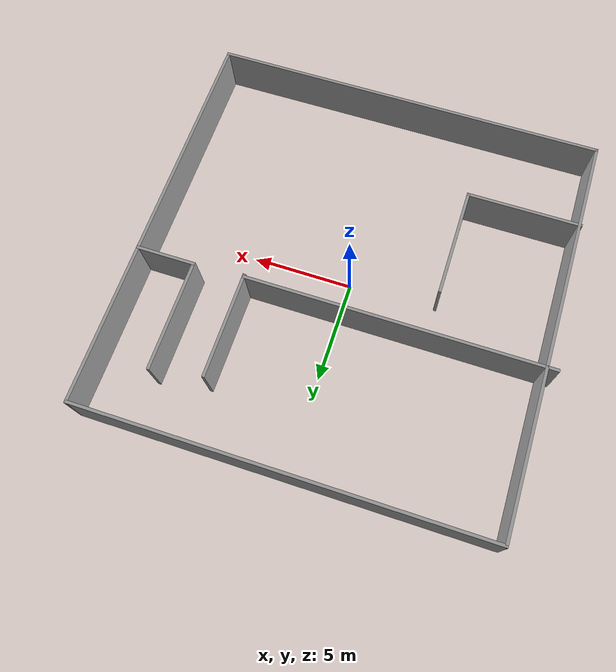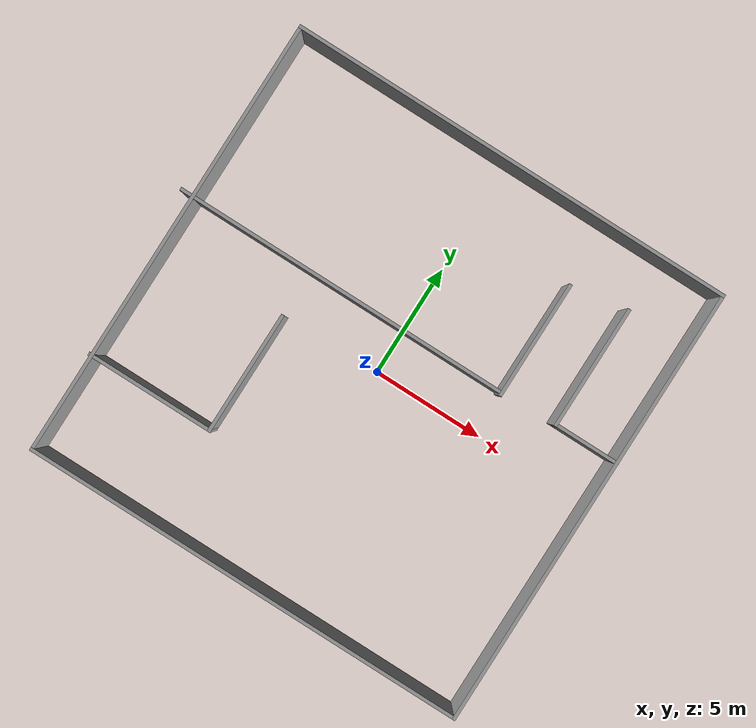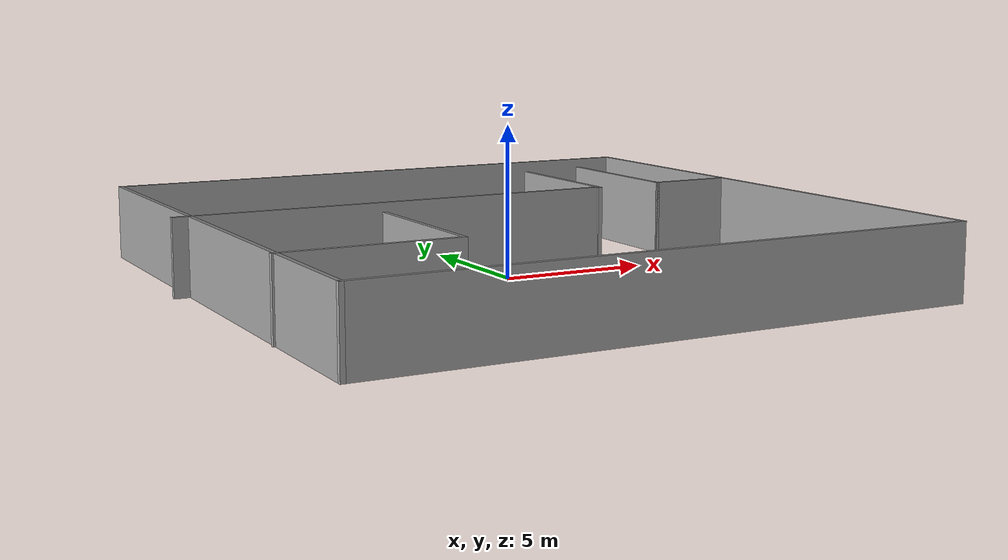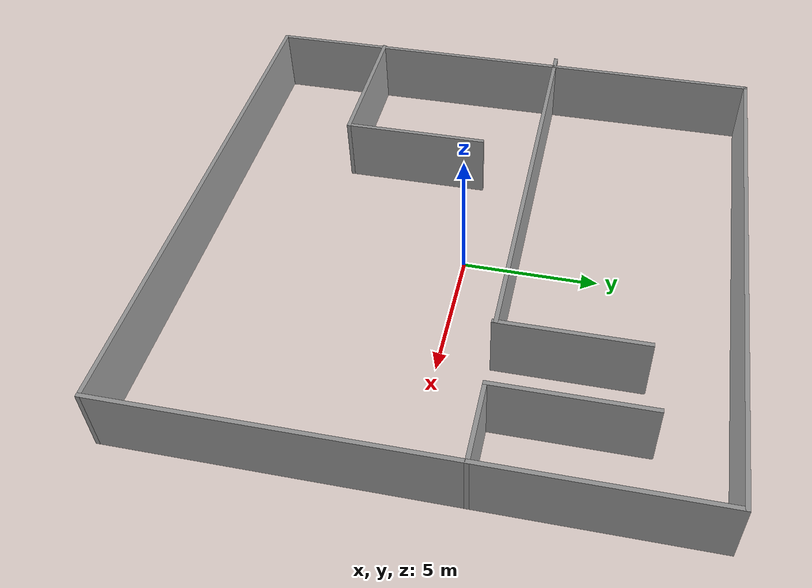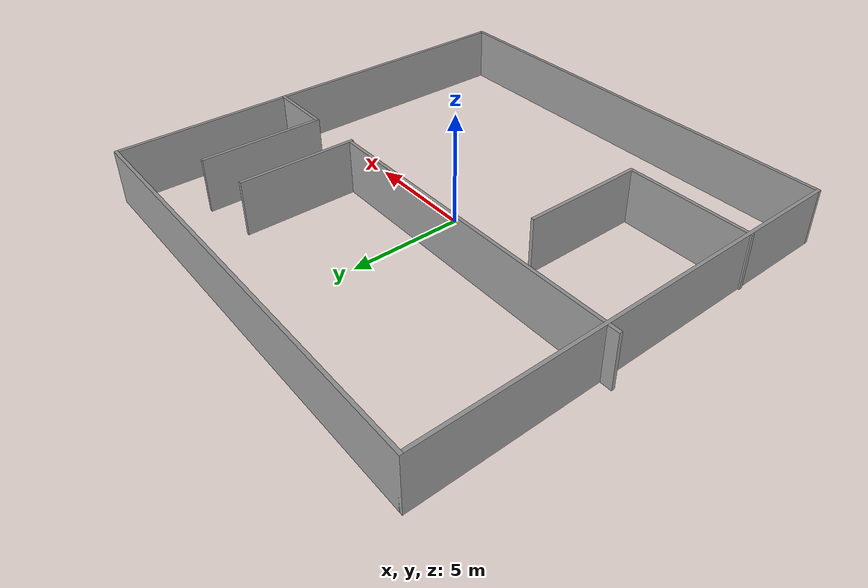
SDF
<?xml version='1.0'?>
<sdf version='1.6'>
  <model name='walls'>
    <link name='Wall_0'>
      <pose frame=''>0.030536 9.925 0 0 -0 0</pose>
      <self_collide>0</self_collide>
      <enable_wind>0</enable_wind>
      <kinematic>0</kinematic>
      <visual name='Wall_0_Visual'>
        <pose frame=''>0 0 1.25 0 -0 0</pose>
        <geometry>
          <box>
            <size>20 0.15 2.5</size>
          </box>
        </geometry>
        <material>
          <script>
            <uri>file://media/materials/scripts/gazebo.material</uri>
            <name>Gazebo/Grey</name>
          </script>
          <ambient>1 1 1 1</ambient>
        </material>
        <transparency>0</transparency>
        <cast_shadows>1</cast_shadows>
      </visual>
      <collision name='Wall_0_Collision'>
        <laser_retro>0</laser_retro>
        <max_contacts>10</max_contacts>
        <pose frame=''>0 0 1.25 0 -0 0</pose>
        <geometry>
          <box>
            <size>20 0.15 2.5</size>
          </box>
        </geometry>
        <surface>
          <friction>
            <ode>
              <mu>1</mu>
              <mu2>1</mu2>
              <fdir1>0 0 0</fdir1>
              <slip1>0</slip1>
              <slip2>0</slip2>
            </ode>
            <torsional>
              <coefficient>1</coefficient>
              <patch_radius>0</patch_radius>
              <surface_radius>0</surface_radius>
              <use_patch_radius>1</use_patch_radius>
              <ode>
                <slip>0</slip>
              </ode>
            </torsional>
          </friction>
          <bounce>
            <restitution_coefficient>0</restitution_coefficient>
            <threshold>1e+06</threshold>
          </bounce>
          <contact>
            <collide_without_contact>0</collide_without_contact>
            <collide_without_contact_bitmask>1</collide_without_contact_bitmask>
            <collide_bitmask>1</collide_bitmask>
            <ode>
              <soft_cfm>0</soft_cfm>
              <soft_erp>0.2</soft_erp>
              <kp>1e+13</kp>
              <kd>1</kd>
              <max_vel>0.01</max_vel>
              <min_depth>0</min_depth>
            </ode>
            <bullet>
              <split_impulse>1</split_impulse>
              <split_impulse_penetration_threshold>-0.01</split_impulse_penetration_threshold>
              <soft_cfm>0</soft_cfm>
              <soft_erp>0.2</soft_erp>
              <kp>1e+13</kp>
              <kd>1</kd>
            </bullet>
          </contact>
        </surface>
      </collision>
    </link>
    <link name='Wall_1'>
      <pose frame=''>9.95554 0 0 0 0 -1.5708</pose>
      <self_collide>0</self_collide>
      <enable_wind>0</enable_wind>
      <kinematic>0</kinematic>
      <visual name='Wall_1_Visual'>
        <pose frame=''>0 0 1.25 0 -0 0</pose>
        <geometry>
          <box>
            <size>20 0.15 2.5</size>
          </box>
        </geometry>
        <material>
          <script>
            <uri>file://media/materials/scripts/gazebo.material</uri>
            <name>Gazebo/Grey</name>
          </script>
          <ambient>1 1 1 1</ambient>
        </material>
        <transparency>0</transparency>
        <cast_shadows>1</cast_shadows>
      </visual>
      <collision name='Wall_1_Collision'>
        <laser_retro>0</laser_retro>
        <max_contacts>10</max_contacts>
        <pose frame=''>0 0 1.25 0 -0 0</pose>
        <geometry>
          <box>
            <size>20 0.15 2.5</size>
          </box>
        </geometry>
        <surface>
          <friction>
            <ode>
              <mu>1</mu>
              <mu2>1</mu2>
              <fdir1>0 0 0</fdir1>
              <slip1>0</slip1>
              <slip2>0</slip2>
            </ode>
            <torsional>
              <coefficient>1</coefficient>
              <patch_radius>0</patch_radius>
              <surface_radius>0</surface_radius>
              <use_patch_radius>1</use_patch_radius>
              <ode>
                <slip>0</slip>
              </ode>
            </torsional>
          </friction>
          <bounce>
            <restitution_coefficient>0</restitution_coefficient>
            <threshold>1e+06</threshold>
          </bounce>
          <contact>
            <collide_without_contact>0</collide_without_contact>
            <collide_without_contact_bitmask>1</collide_without_contact_bitmask>
            <collide_bitmask>1</collide_bitmask>
            <ode>
              <soft_cfm>0</soft_cfm>
              <soft_erp>0.2</soft_erp>
              <kp>1e+13</kp>
              <kd>1</kd>
              <max_vel>0.01</max_vel>
              <min_depth>0</min_depth>
            </ode>
            <bullet>
              <split_impulse>1</split_impulse>
              <split_impulse_penetration_threshold>-0.01</split_impulse_penetration_threshold>
              <soft_cfm>0</soft_cfm>
              <soft_erp>0.2</soft_erp>
              <kp>1e+13</kp>
              <kd>1</kd>
            </bullet>
          </contact>
        </surface>
      </collision>
    </link>
    <link name='Wall_2'>
      <pose frame=''>0.030536 -9.925 0 0 -0 3.14159</pose>
      <self_collide>0</self_collide>
      <enable_wind>0</enable_wind>
      <kinematic>0</kinematic>
      <visual name='Wall_2_Visual'>
        <pose frame=''>0 0 1.25 0 -0 0</pose>
        <geometry>
          <box>
            <size>20 0.15 2.5</size>
          </box>
        </geometry>
        <material>
          <script>
            <uri>file://media/materials/scripts/gazebo.material</uri>
            <name>Gazebo/Grey</name>
          </script>
          <ambient>1 1 1 1</ambient>
        </material>
        <transparency>0</transparency>
        <cast_shadows>1</cast_shadows>
      </visual>
      <collision name='Wall_2_Collision'>
        <laser_retro>0</laser_retro>
        <max_contacts>10</max_contacts>
        <pose frame=''>0 0 1.25 0 -0 0</pose>
        <geometry>
          <box>
            <size>20 0.15 2.5</size>
          </box>
        </geometry>
        <surface>
          <friction>
            <ode>
              <mu>1</mu>
              <mu2>1</mu2>
              <fdir1>0 0 0</fdir1>
              <slip1>0</slip1>
              <slip2>0</slip2>
            </ode>
            <torsional>
              <coefficient>1</coefficient>
              <patch_radius>0</patch_radius>
              <surface_radius>0</surface_radius>
              <use_patch_radius>1</use_patch_radius>
              <ode>
                <slip>0</slip>
              </ode>
            </torsional>
          </friction>
          <bounce>
            <restitution_coefficient>0</restitution_coefficient>
            <threshold>1e+06</threshold>
          </bounce>
          <contact>
            <collide_without_contact>0</collide_without_contact>
            <collide_without_contact_bitmask>1</collide_without_contact_bitmask>
            <collide_bitmask>1</collide_bitmask>
            <ode>
              <soft_cfm>0</soft_cfm>
              <soft_erp>0.2</soft_erp>
              <kp>1e+13</kp>
              <kd>1</kd>
              <max_vel>0.01</max_vel>
              <min_depth>0</min_depth>
            </ode>
            <bullet>
              <split_impulse>1</split_impulse>
              <split_impulse_penetration_threshold>-0.01</split_impulse_penetration_threshold>
              <soft_cfm>0</soft_cfm>
              <soft_erp>0.2</soft_erp>
              <kp>1e+13</kp>
              <kd>1</kd>
            </bullet>
          </contact>
        </surface>
      </collision>
    </link>
    <link name='Wall_25'>
      <pose frame=''>4.62195 4.44502 0 0 -0 1.5708</pose>
      <self_collide>0</self_collide>
      <enable_wind>0</enable_wind>
      <kinematic>0</kinematic>
      <gravity>1</gravity>
      <inertial>
        <mass>1</mass>
        <pose frame=''>0 0 0 0 -0 0</pose>
        <inertia>
          <ixx>1</ixx>
          <ixy>0</ixy>
          <ixz>0</ixz>
          <iyy>1</iyy>
          <iyz>0</iyz>
          <izz>1</izz>
        </inertia>
      </inertial>
      <visual name='Wall_25_Visual'>
        <pose frame=''>0 0 1.25 0 -0 0</pose>
        <geometry>
          <box>
            <size>5.25 0.15 2.5</size>
          </box>
        </geometry>
        <material>
          <script>
            <uri>file://media/materials/scripts/gazebo.material</uri>
            <name>Gazebo/Grey</name>
          </script>
          <ambient>1 1 1 1</ambient>
          <shader type='vertex'>
            <normal_map>__default__</normal_map>
          </shader>
          <diffuse>0.7 0.7 0.7 1</diffuse>
          <specular>0.01 0.01 0.01 1</specular>
          <emissive>0 0 0 1</emissive>
        </material>
        <transparency>0</transparency>
        <cast_shadows>1</cast_shadows>
      </visual>
      <collision name='Wall_25_Collision'>
        <laser_retro>0</laser_retro>
        <max_contacts>10</max_contacts>
        <pose frame=''>0 0 1.25 0 -0 0</pose>
        <geometry>
          <box>
            <size>5.25 0.15 2.5</size>
          </box>
        </geometry>
        <surface>
          <friction>
            <ode>
              <mu>1</mu>
              <mu2>1</mu2>
              <fdir1>0 0 0</fdir1>
              <slip1>0</slip1>
              <slip2>0</slip2>
            </ode>
            <torsional>
              <coefficient>1</coefficient>
              <patch_radius>0</patch_radius>
              <surface_radius>0</surface_radius>
              <use_patch_radius>1</use_patch_radius>
              <ode>
                <slip>0</slip>
              </ode>
            </torsional>
          </friction>
          <bounce>
            <restitution_coefficient>0</restitution_coefficient>
            <threshold>1e+06</threshold>
          </bounce>
          <contact>
            <collide_without_contact>0</collide_without_contact>
            <collide_without_contact_bitmask>1</collide_without_contact_bitmask>
            <collide_bitmask>1</collide_bitmask>
            <ode>
              <soft_cfm>0</soft_cfm>
              <soft_erp>0.2</soft_erp>
              <kp>1e+13</kp>
              <kd>1</kd>
              <max_vel>0.01</max_vel>
              <min_depth>0</min_depth>
            </ode>
            <bullet>
              <split_impulse>1</split_impulse>
              <split_impulse_penetration_threshold>-0.01</split_impulse_penetration_threshold>
              <soft_cfm>0</soft_cfm>
              <soft_erp>0.2</soft_erp>
              <kp>1e+13</kp>
              <kd>1</kd>
            </bullet>
          </contact>
        </surface>
      </collision>
    </link>
    <link name='Wall_27'>
      <pose frame=''>7.10914 4.73454 0 0 0 -1.5708</pose>
      <self_collide>0</self_collide>
      <enable_wind>0</enable_wind>
      <kinematic>0</kinematic>
      <visual name='Wall_27_Visual'>
        <pose frame=''>0 0 1.25 0 -0 0</pose>
        <geometry>
          <box>
            <size>5.5 0.15 2.5</size>
          </box>
        </geometry>
        <material>
          <script>
            <uri>file://media/materials/scripts/gazebo.material</uri>
            <name>Gazebo/Grey</name>
          </script>
          <ambient>1 1 1 1</ambient>
        </material>
        <transparency>0</transparency>
        <cast_shadows>1</cast_shadows>
      </visual>
      <collision name='Wall_27_Collision'>
        <laser_retro>0</laser_retro>
        <max_contacts>10</max_contacts>
        <pose frame=''>0 0 1.25 0 -0 0</pose>
        <geometry>
          <box>
            <size>5.5 0.15 2.5</size>
          </box>
        </geometry>
        <surface>
          <friction>
            <ode>
              <mu>1</mu>
              <mu2>1</mu2>
              <fdir1>0 0 0</fdir1>
              <slip1>0</slip1>
              <slip2>0</slip2>
            </ode>
            <torsional>
              <coefficient>1</coefficient>
              <patch_radius>0</patch_radius>
              <surface_radius>0</surface_radius>
              <use_patch_radius>1</use_patch_radius>
              <ode>
                <slip>0</slip>
              </ode>
            </torsional>
          </friction>
          <bounce>
            <restitution_coefficient>0</restitution_coefficient>
            <threshold>1e+06</threshold>
          </bounce>
          <contact>
            <collide_without_contact>0</collide_without_contact>
            <collide_without_contact_bitmask>1</collide_without_contact_bitmask>
            <collide_bitmask>1</collide_bitmask>
            <ode>
              <soft_cfm>0</soft_cfm>
              <soft_erp>0.2</soft_erp>
              <kp>1e+13</kp>
              <kd>1</kd>
              <max_vel>0.01</max_vel>
              <min_depth>0</min_depth>
            </ode>
            <bullet>
              <split_impulse>1</split_impulse>
              <split_impulse_penetration_threshold>-0.01</split_impulse_penetration_threshold>
              <soft_cfm>0</soft_cfm>
              <soft_erp>0.2</soft_erp>
              <kp>1e+13</kp>
              <kd>1</kd>
            </bullet>
          </contact>
        </surface>
      </collision>
    </link>
    <link name='Wall_28'>
      <pose frame=''>8.53414 2.05954 0 0 -0 0</pose>
      <self_collide>0</self_collide>
      <enable_wind>0</enable_wind>
      <kinematic>0</kinematic>
      <visual name='Wall_28_Visual'>
        <pose frame=''>0 0 1.25 0 -0 0</pose>
        <geometry>
          <box>
            <size>3 0.15 2.5</size>
          </box>
        </geometry>
        <material>
          <script>
            <uri>file://media/materials/scripts/gazebo.material</uri>
            <name>Gazebo/Grey</name>
          </script>
          <ambient>1 1 1 1</ambient>
        </material>
        <transparency>0</transparency>
        <cast_shadows>1</cast_shadows>
      </visual>
      <collision name='Wall_28_Collision'>
        <laser_retro>0</laser_retro>
        <max_contacts>10</max_contacts>
        <pose frame=''>0 0 1.25 0 -0 0</pose>
        <geometry>
          <box>
            <size>3 0.15 2.5</size>
          </box>
        </geometry>
        <surface>
          <friction>
            <ode>
              <mu>1</mu>
              <mu2>1</mu2>
              <fdir1>0 0 0</fdir1>
              <slip1>0</slip1>
              <slip2>0</slip2>
            </ode>
            <torsional>
              <coefficient>1</coefficient>
              <patch_radius>0</patch_radius>
              <surface_radius>0</surface_radius>
              <use_patch_radius>1</use_patch_radius>
              <ode>
                <slip>0</slip>
              </ode>
            </torsional>
          </friction>
          <bounce>
            <restitution_coefficient>0</restitution_coefficient>
            <threshold>1e+06</threshold>
          </bounce>
          <contact>
            <collide_without_contact>0</collide_without_contact>
            <collide_without_contact_bitmask>1</collide_without_contact_bitmask>
            <collide_bitmask>1</collide_bitmask>
            <ode>
              <soft_cfm>0</soft_cfm>
              <soft_erp>0.2</soft_erp>
              <kp>1e+13</kp>
              <kd>1</kd>
              <max_vel>0.01</max_vel>
              <min_depth>0</min_depth>
            </ode>
            <bullet>
              <split_impulse>1</split_impulse>
              <split_impulse_penetration_threshold>-0.01</split_impulse_penetration_threshold>
              <soft_cfm>0</soft_cfm>
              <soft_erp>0.2</soft_erp>
              <kp>1e+13</kp>
              <kd>1</kd>
            </bullet>
          </contact>
        </surface>
      </collision>
    </link>
    <link name='Wall_3'>
      <pose frame=''>-9.89446 0 0 0 -0 1.5708</pose>
      <self_collide>0</self_collide>
      <enable_wind>0</enable_wind>
      <kinematic>0</kinematic>
      <visual name='Wall_3_Visual'>
        <pose frame=''>0 0 1.25 0 -0 0</pose>
        <geometry>
          <box>
            <size>20 0.15 2.5</size>
          </box>
        </geometry>
        <material>
          <script>
            <uri>file://media/materials/scripts/gazebo.material</uri>
            <name>Gazebo/Grey</name>
          </script>
          <ambient>1 1 1 1</ambient>
        </material>
        <transparency>0</transparency>
        <cast_shadows>1</cast_shadows>
      </visual>
      <collision name='Wall_3_Collision'>
        <laser_retro>0</laser_retro>
        <max_contacts>10</max_contacts>
        <pose frame=''>0 0 1.25 0 -0 0</pose>
        <geometry>
          <box>
            <size>20 0.15 2.5</size>
          </box>
        </geometry>
        <surface>
          <friction>
            <ode>
              <mu>1</mu>
              <mu2>1</mu2>
              <fdir1>0 0 0</fdir1>
              <slip1>0</slip1>
              <slip2>0</slip2>
            </ode>
            <torsional>
              <coefficient>1</coefficient>
              <patch_radius>0</patch_radius>
              <surface_radius>0</surface_radius>
              <use_patch_radius>1</use_patch_radius>
              <ode>
                <slip>0</slip>
              </ode>
            </torsional>
          </friction>
          <bounce>
            <restitution_coefficient>0</restitution_coefficient>
            <threshold>1e+06</threshold>
          </bounce>
          <contact>
            <collide_without_contact>0</collide_without_contact>
            <collide_without_contact_bitmask>1</collide_without_contact_bitmask>
            <collide_bitmask>1</collide_bitmask>
            <ode>
              <soft_cfm>0</soft_cfm>
              <soft_erp>0.2</soft_erp>
              <kp>1e+13</kp>
              <kd>1</kd>
              <max_vel>0.01</max_vel>
              <min_depth>0</min_depth>
            </ode>
            <bullet>
              <split_impulse>1</split_impulse>
              <split_impulse_penetration_threshold>-0.01</split_impulse_penetration_threshold>
              <soft_cfm>0</soft_cfm>
              <soft_erp>0.2</soft_erp>
              <kp>1e+13</kp>
              <kd>1</kd>
            </bullet>
          </contact>
        </surface>
      </collision>
    </link>
    <link name='Wall_30'>
      <pose frame=''>-4.35914 -2.82889 0 0 0 -1.5708</pose>
      <self_collide>0</self_collide>
      <enable_wind>0</enable_wind>
      <kinematic>0</kinematic>
      <visual name='Wall_30_Visual'>
        <pose frame=''>0 0 1.25 0 -0 0</pose>
        <geometry>
          <box>
            <size>5.5 0.15 2.5</size>
          </box>
        </geometry>
        <material>
          <script>
            <uri>file://media/materials/scripts/gazebo.material</uri>
            <name>Gazebo/Grey</name>
          </script>
          <ambient>1 1 1 1</ambient>
        </material>
        <transparency>0</transparency>
        <cast_shadows>1</cast_shadows>
      </visual>
      <collision name='Wall_30_Collision'>
        <laser_retro>0</laser_retro>
        <max_contacts>10</max_contacts>
        <pose frame=''>0 0 1.25 0 -0 0</pose>
        <geometry>
          <box>
            <size>5.5 0.15 2.5</size>
          </box>
        </geometry>
        <surface>
          <friction>
            <ode>
              <mu>1</mu>
              <mu2>1</mu2>
              <fdir1>0 0 0</fdir1>
              <slip1>0</slip1>
              <slip2>0</slip2>
            </ode>
            <torsional>
              <coefficient>1</coefficient>
              <patch_radius>0</patch_radius>
              <surface_radius>0</surface_radius>
              <use_patch_radius>1</use_patch_radius>
              <ode>
                <slip>0</slip>
              </ode>
            </torsional>
          </friction>
          <bounce>
            <restitution_coefficient>0</restitution_coefficient>
            <threshold>1e+06</threshold>
          </bounce>
          <contact>
            <collide_without_contact>0</collide_without_contact>
            <collide_without_contact_bitmask>1</collide_without_contact_bitmask>
            <collide_bitmask>1</collide_bitmask>
            <ode>
              <soft_cfm>0</soft_cfm>
              <soft_erp>0.2</soft_erp>
              <kp>1e+13</kp>
              <kd>1</kd>
              <max_vel>0.01</max_vel>
              <min_depth>0</min_depth>
            </ode>
            <bullet>
              <split_impulse>1</split_impulse>
              <split_impulse_penetration_threshold>-0.01</split_impulse_penetration_threshold>
              <soft_cfm>0</soft_cfm>
              <soft_erp>0.2</soft_erp>
              <kp>1e+13</kp>
              <kd>1</kd>
            </bullet>
          </contact>
        </surface>
      </collision>
    </link>
    <link name='Wall_31'>
      <pose frame=''>-7.15914 -5.50389 0 0 -0 3.14159</pose>
      <self_collide>0</self_collide>
      <enable_wind>0</enable_wind>
      <kinematic>0</kinematic>
      <visual name='Wall_31_Visual'>
        <pose frame=''>0 0 1.25 0 -0 0</pose>
        <geometry>
          <box>
            <size>5.75 0.15 2.5</size>
          </box>
        </geometry>
        <material>
          <script>
            <uri>file://media/materials/scripts/gazebo.material</uri>
            <name>Gazebo/Grey</name>
          </script>
          <ambient>1 1 1 1</ambient>
        </material>
        <transparency>0</transparency>
        <cast_shadows>1</cast_shadows>
      </visual>
      <collision name='Wall_31_Collision'>
        <laser_retro>0</laser_retro>
        <max_contacts>10</max_contacts>
        <pose frame=''>0 0 1.25 0 -0 0</pose>
        <geometry>
          <box>
            <size>5.75 0.15 2.5</size>
          </box>
        </geometry>
        <surface>
          <friction>
            <ode>
              <mu>1</mu>
              <mu2>1</mu2>
              <fdir1>0 0 0</fdir1>
              <slip1>0</slip1>
              <slip2>0</slip2>
            </ode>
            <torsional>
              <coefficient>1</coefficient>
              <patch_radius>0</patch_radius>
              <surface_radius>0</surface_radius>
              <use_patch_radius>1</use_patch_radius>
              <ode>
                <slip>0</slip>
              </ode>
            </torsional>
          </friction>
          <bounce>
            <restitution_coefficient>0</restitution_coefficient>
            <threshold>1e+06</threshold>
          </bounce>
          <contact>
            <collide_without_contact>0</collide_without_contact>
            <collide_without_contact_bitmask>1</collide_without_contact_bitmask>
            <collide_bitmask>1</collide_bitmask>
            <ode>
              <soft_cfm>0</soft_cfm>
              <soft_erp>0.2</soft_erp>
              <kp>1e+13</kp>
              <kd>1</kd>
              <max_vel>0.01</max_vel>
              <min_depth>0</min_depth>
            </ode>
            <bullet>
              <split_impulse>1</split_impulse>
              <split_impulse_penetration_threshold>-0.01</split_impulse_penetration_threshold>
              <soft_cfm>0</soft_cfm>
              <soft_erp>0.2</soft_erp>
              <kp>1e+13</kp>
              <kd>1</kd>
            </bullet>
          </contact>
        </surface>
      </collision>
    </link>
    <link name='Wall_5'>
      <pose frame=''>-2.8966 1.96136 0 0 -0 0</pose>
      <self_collide>0</self_collide>
      <enable_wind>0</enable_wind>
      <kinematic>0</kinematic>
      <gravity>1</gravity>
      <inertial>
        <mass>0.945831</mass>
        <pose frame=''>0 0 0 0 -0 0</pose>
        <inertia>
          <ixx>0.494394</ixx>
          <ixy>0</ixy>
          <ixz>0</ixz>
          <iyy>18.5435</iyy>
          <iyz>0</iyz>
          <izz>18.0527</izz>
        </inertia>
      </inertial>
      <visual name='Wall_5_Visual'>
        <pose frame=''>0 0 1.25 0 -0 0</pose>
        <geometry>
          <box>
            <size>15.1546 0.15 2.5</size>
          </box>
        </geometry>
        <material>
          <script>
            <uri>file://media/materials/scripts/gazebo.material</uri>
            <name>Gazebo/Grey</name>
          </script>
          <ambient>1 1 1 1</ambient>
          <shader type='vertex'>
            <normal_map>__default__</normal_map>
          </shader>
          <diffuse>0.7 0.7 0.7 1</diffuse>
          <specular>0.01 0.01 0.01 1</specular>
          <emissive>0 0 0 1</emissive>
        </material>
        <transparency>0</transparency>
        <cast_shadows>1</cast_shadows>
      </visual>
      <collision name='Wall_5_Collision'>
        <laser_retro>0</laser_retro>
        <max_contacts>10</max_contacts>
        <pose frame=''>0 0 1.25 0 -0 0</pose>
        <geometry>
          <box>
            <size>15.1333 0.15 2.5</size>
          </box>
        </geometry>
        <surface>
          <friction>
            <ode>
              <mu>1</mu>
              <mu2>1</mu2>
              <fdir1>0 0 0</fdir1>
              <slip1>0</slip1>
              <slip2>0</slip2>
            </ode>
            <torsional>
              <coefficient>1</coefficient>
              <patch_radius>0</patch_radius>
              <surface_radius>0</surface_radius>
              <use_patch_radius>1</use_patch_radius>
              <ode>
                <slip>0</slip>
              </ode>
            </torsional>
          </friction>
          <bounce>
            <restitution_coefficient>0</restitution_coefficient>
            <threshold>1e+06</threshold>
          </bounce>
          <contact>
            <collide_without_contact>0</collide_without_contact>
            <collide_without_contact_bitmask>1</collide_without_contact_bitmask>
            <collide_bitmask>1</collide_bitmask>
            <ode>
              <soft_cfm>0</soft_cfm>
              <soft_erp>0.2</soft_erp>
              <kp>1e+13</kp>
              <kd>1</kd>
              <max_vel>0.01</max_vel>
              <min_depth>0</min_depth>
            </ode>
            <bullet>
              <split_impulse>1</split_impulse>
              <split_impulse_penetration_threshold>-0.01</split_impulse_penetration_threshold>
              <soft_cfm>0</soft_cfm>
              <soft_erp>0.2</soft_erp>
              <kp>1e+13</kp>
              <kd>1</kd>
            </bullet>
          </contact>
        </surface>
      </collision>
    </link>
    <static>1</static>
    <allow_auto_disable>1</allow_auto_disable>
  </model>
</sdf>
